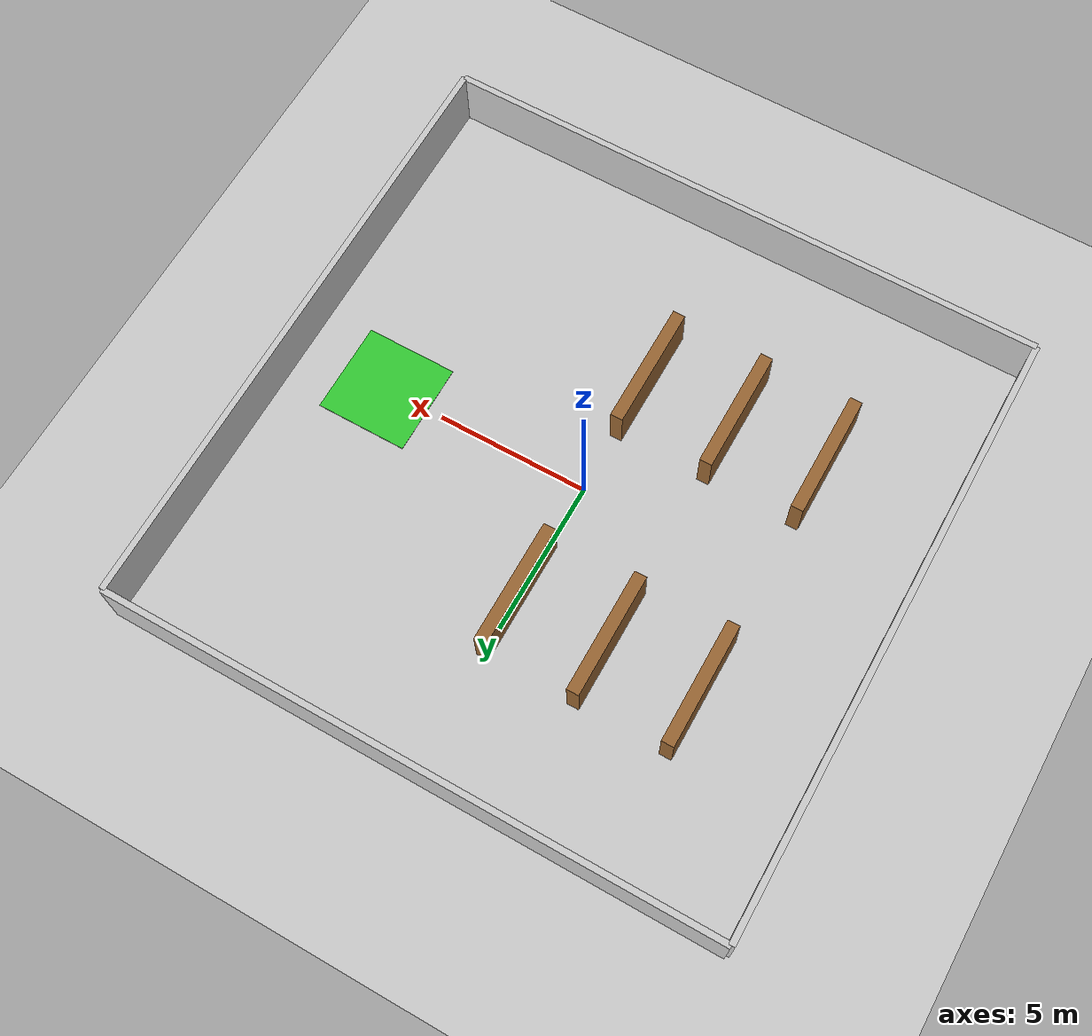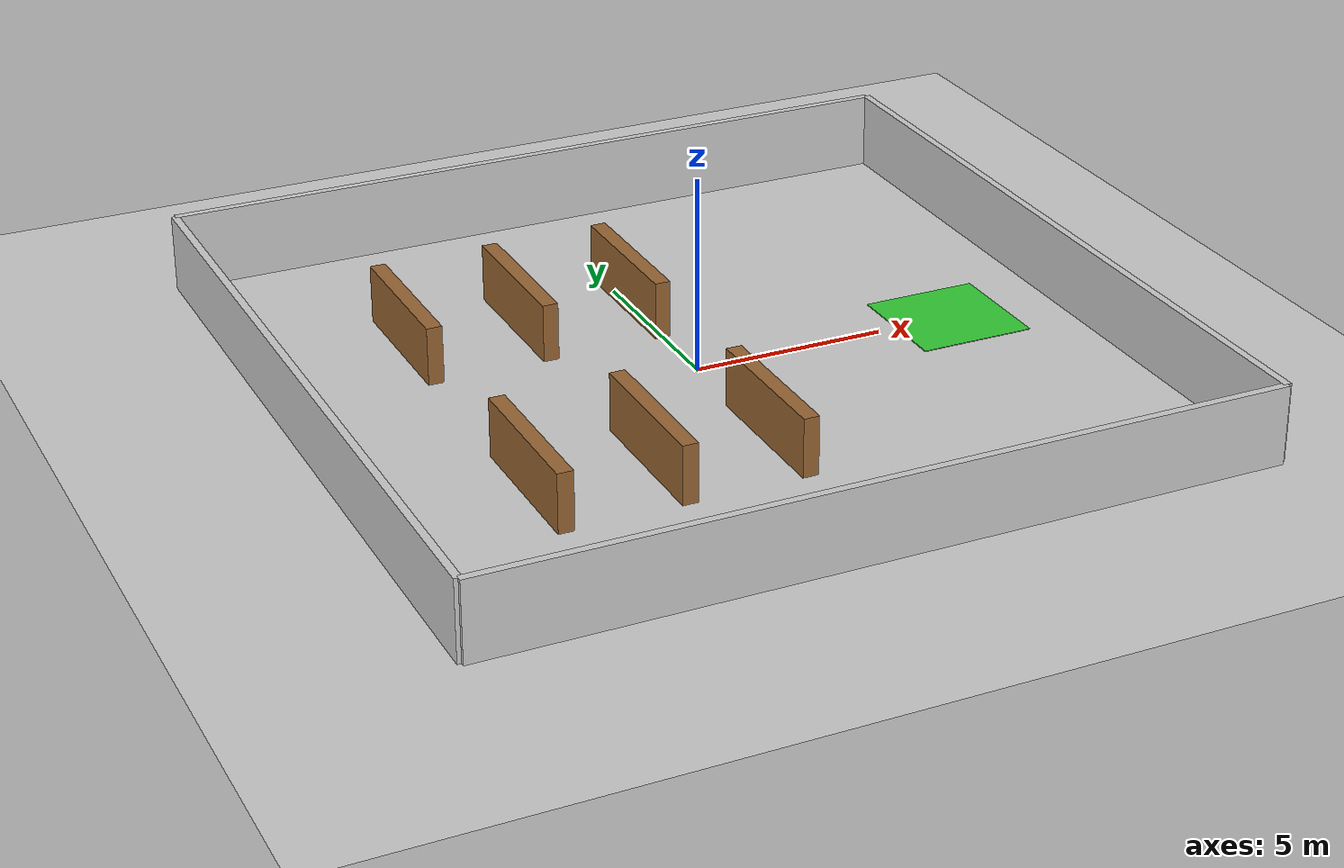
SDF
<?xml version="1.0" ?>
<sdf version="1.6">
  <world name="warehouse">

    <!-- Lumière principale -->
    <include>
      <uri>model://sun</uri>
    </include>

    <!-- Sol -->
    <include>
      <uri>model://ground_plane</uri>
    </include>

    <!-- Mur Nord -->
    <model name="wall_north">
      <static>true</static>
      <pose>0 10 1 0 0 0</pose>
      <link name="link">
        <collision name="collision">
          <geometry><box><size>20 0.2 2</size></box></geometry>
        </collision>
        <visual name="visual">
          <geometry><box><size>20 0.2 2</size></box></geometry>
          <material><ambient>0.8 0.8 0.8 1</ambient></material>
        </visual>
      </link>
    </model>

    <!-- Mur Sud -->
    <model name="wall_south">
      <static>true</static>
      <pose>0 -10 1 0 0 0</pose>
      <link name="link">
        <collision name="collision">
          <geometry><box><size>20 0.2 2</size></box></geometry>
        </collision>
        <visual name="visual">
          <geometry><box><size>20 0.2 2</size></box></geometry>
          <material><ambient>0.8 0.8 0.8 1</ambient></material>
        </visual>
      </link>
    </model>

    <!-- Mur Est -->
    <model name="wall_east">
      <static>true</static>
      <pose>10 0 1 0 0 0</pose>
      <link name="link">
        <collision name="collision">
          <geometry><box><size>0.2 20 2</size></box></geometry>
        </collision>
        <visual name="visual">
          <geometry><box><size>0.2 20 2</size></box></geometry>
          <material><ambient>0.8 0.8 0.8 1</ambient></material>
        </visual>
      </link>
    </model>

    <!-- Mur Ouest -->
    <model name="wall_west">
      <static>true</static>
      <pose>-10 0 1 0 0 0</pose>
      <link name="link">
        <collision name="collision">
          <geometry><box><size>0.2 20 2</size></box></geometry>
        </collision>
        <visual name="visual">
          <geometry><box><size>0.2 20 2</size></box></geometry>
          <material><ambient>0.8 0.8 0.8 1</ambient></material>
        </visual>
      </link>
    </model>

    <!-- Rayonnage 1 -->
    <model name="shelf_1">
      <static>true</static>
      <pose>-6 -4 0.75 0 0 0</pose>
      <link name="link">
        <collision name="collision">
          <geometry><box><size>0.4 4 1.5</size></box></geometry>
        </collision>
        <visual name="visual">
          <geometry><box><size>0.4 4 1.5</size></box></geometry>
          <material><ambient>0.6 0.4 0.2 1</ambient></material>
        </visual>
      </link>
    </model>

    <!-- Rayonnage 2 -->
    <model name="shelf_2">
      <static>true</static>
      <pose>-3 -4 0.75 0 0 0</pose>
      <link name="link">
        <collision name="collision">
          <geometry><box><size>0.4 4 1.5</size></box></geometry>
        </collision>
        <visual name="visual">
          <geometry><box><size>0.4 4 1.5</size></box></geometry>
          <material><ambient>0.6 0.4 0.2 1</ambient></material>
        </visual>
      </link>
    </model>

    <!-- Rayonnage 3 -->
    <model name="shelf_3">
      <static>true</static>
      <pose>0 -4 0.75 0 0 0</pose>
      <link name="link">
        <collision name="collision">
          <geometry><box><size>0.4 4 1.5</size></box></geometry>
        </collision>
        <visual name="visual">
          <geometry><box><size>0.4 4 1.5</size></box></geometry>
          <material><ambient>0.6 0.4 0.2 1</ambient></material>
        </visual>
      </link>
    </model>

    <!-- Rayonnage 4 -->
    <model name="shelf_4">
      <static>true</static>
      <pose>-6 4 0.75 0 0 0</pose>
      <link name="link">
        <collision name="collision">
          <geometry><box><size>0.4 4 1.5</size></box></geometry>
        </collision>
        <visual name="visual">
          <geometry><box><size>0.4 4 1.5</size></box></geometry>
          <material><ambient>0.6 0.4 0.2 1</ambient></material>
        </visual>
      </link>
    </model>

    <!-- Rayonnage 5 -->
    <model name="shelf_5">
      <static>true</static>
      <pose>-3 4 0.75 0 0 0</pose>
      <link name="link">
        <collision name="collision">
          <geometry><box><size>0.4 4 1.5</size></box></geometry>
        </collision>
        <visual name="visual">
          <geometry><box><size>0.4 4 1.5</size></box></geometry>
          <material><ambient>0.6 0.4 0.2 1</ambient></material>
        </visual>
      </link>
    </model>

    <!-- Rayonnage 6 -->
    <model name="shelf_6">
      <static>true</static>
      <pose>0 4 0.75 0 0 0</pose>
      <link name="link">
        <collision name="collision">
          <geometry><box><size>0.4 4 1.5</size></box></geometry>
        </collision>
        <visual name="visual">
          <geometry><box><size>0.4 4 1.5</size></box></geometry>
          <material><ambient>0.6 0.4 0.2 1</ambient></material>
        </visual>
      </link>
    </model>

    <!-- Zone de dépôt (marqueur au sol) -->
    <model name="depot_zone">
      <static>true</static>
      <pose>7 0 0.01 0 0 0</pose>
      <link name="link">
        <visual name="visual">
          <geometry><box><size>3 3 0.02</size></box></geometry>
          <material><ambient>0.2 0.8 0.2 1</ambient></material>
        </visual>
      </link>
    </model>

  </world>
</sdf>
